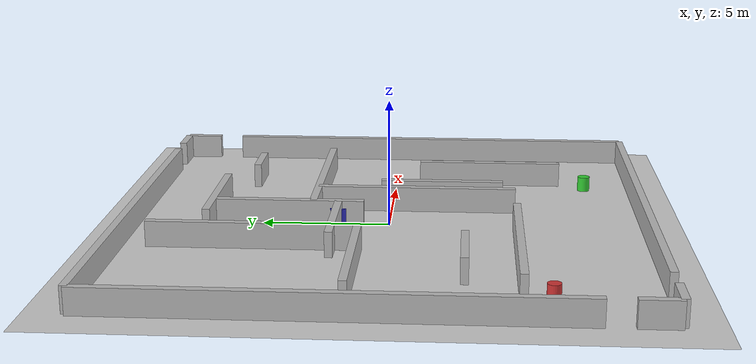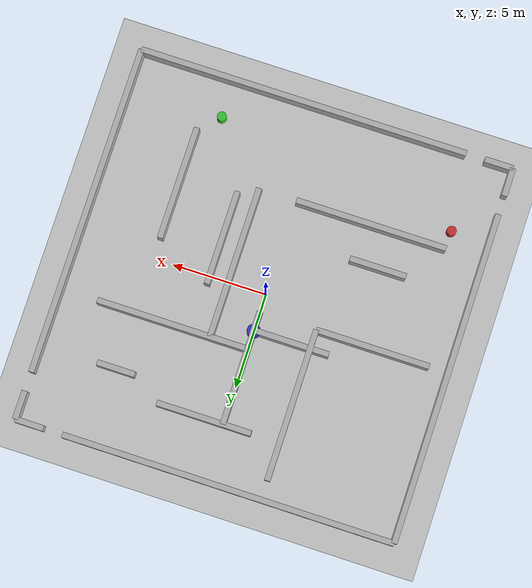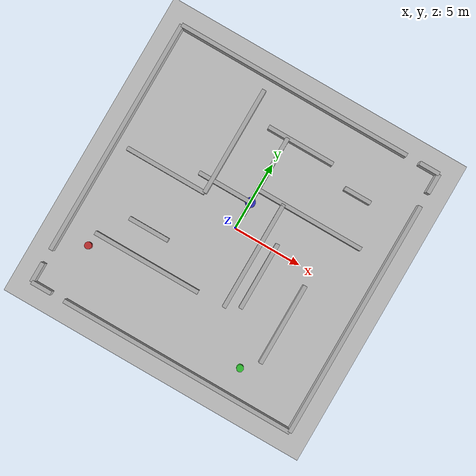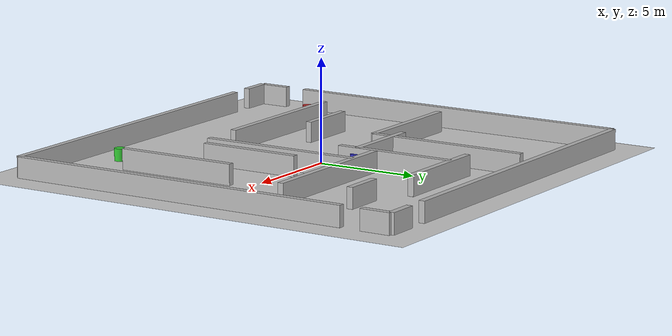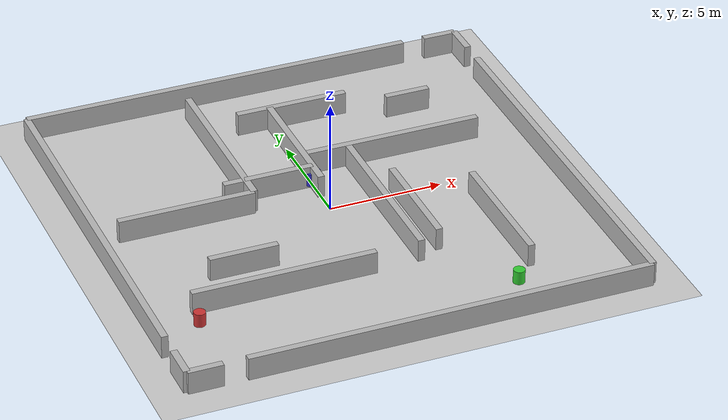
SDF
<sdf version="1.6">
 <world name="maze_world">
  <include><uri>model://sun</uri></include>
  <include><uri>model://ground_plane</uri></include>
  <model name="wall_north_left">
   <static>true</static>
   <link name="link">
    <collision name="collision"><geometry><box><size>17.5 0.3 1</size></box></geometry></collision>
    <visual name="visual"><geometry><box><size>17.5 0.3 1</size></box></geometry></visual>
   </link>
   <pose>-1.25 10 0.5 0 0 0</pose>
  </model>
  <model name="wall_north_right">
   <static>true</static>
   <link name="link">
    <collision name="collision"><geometry><box><size>1.5 0.3 1</size></box></geometry></collision>
    <visual name="visual"><geometry><box><size>1.5 0.3 1</size></box></geometry></visual>
   </link>
   <pose>9.25 10 0.5 0 0 0</pose>
  </model>
  <model name="wall_south_left">
   <static>true</static>
   <link name="link">
    <collision name="collision"><geometry><box><size>1.5 0.3 1</size></box></geometry></collision>
    <visual name="visual"><geometry><box><size>1.5 0.3 1</size></box></geometry></visual>
   </link>
   <pose>-9.25 -10 0.5 0 0 0</pose>
  </model>
  <model name="wall_south_right">
   <static>true</static>
   <link name="link">
    <collision name="collision"><geometry><box><size>17.5 0.3 1</size></box></geometry></collision>
    <visual name="visual"><geometry><box><size>17.5 0.3 1</size></box></geometry></visual>
   </link>
   <pose>1.25 -10 0.5 0 0 0</pose>
  </model>
  <model name="wall_east_bottom">
   <static>true</static>
   <link name="link">
    <collision name="collision"><geometry><box><size>0.3 17.5 1</size></box></geometry></collision>
    <visual name="visual"><geometry><box><size>0.3 17.5 1</size></box></geometry></visual>
   </link>
   <pose>10 -1.25 0.5 0 0 0</pose>
  </model>
  <model name="wall_east_top">
   <static>true</static>
   <link name="link">
    <collision name="collision"><geometry><box><size>0.3 1.5 1</size></box></geometry></collision>
    <visual name="visual"><geometry><box><size>0.3 1.5 1</size></box></geometry></visual>
   </link>
   <pose>10 9.25 0.5 0 0 0</pose>
  </model>
  <model name="wall_west_bottom">
   <static>true</static>
   <link name="link">
    <collision name="collision"><geometry><box><size>0.3 1.5 1</size></box></geometry></collision>
    <visual name="visual"><geometry><box><size>0.3 1.5 1</size></box></geometry></visual>
   </link>
   <pose>-10 -9.25 0.5 0 0 0</pose>
  </model>
  <model name="wall_west_top">
   <static>true</static>
   <link name="link">
    <collision name="collision"><geometry><box><size>0.3 17.5 1</size></box></geometry></collision>
    <visual name="visual"><geometry><box><size>0.3 17.5 1</size></box></geometry></visual>
   </link>
   <pose>-10 1.25 0.5 0 0 0</pose>
  </model>
  <model name="maze_wall1">
   <static>true</static>
   <link name="link">
    <collision name="collision"><geometry><box><size>8 0.3 1</size></box></geometry></collision>
    <visual name="visual"><geometry><box><size>8 0.3 1</size></box></geometry></visual>
   </link>
   <pose>-4 -5 0.5 0 0 0</pose>
  </model>
  <model name="maze_wall2">
   <static>true</static>
   <link name="link">
    <collision name="collision"><geometry><box><size>0.3 8 1</size></box></geometry></collision>
    <visual name="visual"><geometry><box><size>0.3 8 1</size></box></geometry></visual>
   </link>
   <pose>2 -1 0.5 0 0 0</pose>
  </model>
  <model name="maze_wall3">
   <static>true</static>
   <link name="link">
    <collision name="collision"><geometry><box><size>8 0.3 1</size></box></geometry></collision>
    <visual name="visual"><geometry><box><size>8 0.3 1</size></box></geometry></visual>
   </link>
   <pose>4 3 0.5 0 0 0</pose>
  </model>
  <model name="maze_wall4">
   <static>true</static>
   <link name="link">
    <collision name="collision"><geometry><box><size>0.3 8 1</size></box></geometry></collision>
    <visual name="visual"><geometry><box><size>0.3 8 1</size></box></geometry></visual>
   </link>
   <pose>-3 5 0.5 0 0 0</pose>
  </model>
  <model name="maze_wall5">
   <static>true</static>
   <link name="link">
    <collision name="collision"><geometry><box><size>6 0.3 1</size></box></geometry></collision>
    <visual name="visual"><geometry><box><size>6 0.3 1</size></box></geometry></visual>
   </link>
   <pose>-6 1 0.5 0 0 0</pose>
  </model>
  <model name="maze_wall6">
   <static>true</static>
   <link name="link">
    <collision name="collision"><geometry><box><size>0.3 6 1</size></box></geometry></collision>
    <visual name="visual"><geometry><box><size>0.3 6 1</size></box></geometry></visual>
   </link>
   <pose>6 -4 0.5 0 0 0</pose>
  </model>
  <model name="maze_wall7">
   <static>true</static>
   <link name="link">
    <collision name="collision"><geometry><box><size>5 0.3 1</size></box></geometry></collision>
    <visual name="visual"><geometry><box><size>5 0.3 1</size></box></geometry></visual>
   </link>
   <pose>1 7 0.5 0 0 0</pose>
  </model>
  <model name="maze_wall8">
   <static>true</static>
   <link name="link">
    <collision name="collision"><geometry><box><size>0.3 6 1</size></box></geometry></collision>
    <visual name="visual"><geometry><box><size>0.3 6 1</size></box></geometry></visual>
   </link>
   <pose>0 4 0.5 0 0 0</pose>
  </model>
  <model name="maze_wall9">
   <static>true</static>
   <link name="link">
    <collision name="collision"><geometry><box><size>4 0.3 1</size></box></geometry></collision>
    <visual name="visual"><geometry><box><size>4 0.3 1</size></box></geometry></visual>
   </link>
   <pose>-2 2 0.5 0 0 0</pose>
  </model>
  <model name="maze_wall10">
   <static>true</static>
   <link name="link">
    <collision name="collision"><geometry><box><size>0.3 5 1</size></box></geometry></collision>
    <visual name="visual"><geometry><box><size>0.3 5 1</size></box></geometry></visual>
   </link>
   <pose>3 -2 0.5 0 0 0</pose>
  </model>
  <model name="maze_wall11">
   <static>true</static>
   <link name="link">
    <collision name="collision"><geometry><box><size>3 0.3 1</size></box></geometry></collision>
    <visual name="visual"><geometry><box><size>3 0.3 1</size></box></geometry></visual>
   </link>
   <pose>-5 -3 0.5 0 0 0</pose>
  </model>
  <model name="maze_wall12">
   <static>true</static>
   <link name="link">
    <collision name="collision"><geometry><box><size>2 0.3 1</size></box></geometry></collision>
    <visual name="visual"><geometry><box><size>2 0.3 1</size></box></geometry></visual>
   </link>
   <pose>6 6 0.5 0 0 0</pose>
  </model>
  <model name="dynamic_obstacle_1">
   <link name="link">
    <collision name="collision">
     <geometry><cylinder><radius>0.25</radius><length>0.6</length></cylinder></geometry>
    </collision>
    <visual name="visual">
     <geometry><cylinder><radius>0.25</radius><length>0.6</length></cylinder></geometry>
     <material><ambient>0.8 0.2 0.2 1</ambient><diffuse>0.8 0.2 0.2 1</diffuse></material>
    </visual>
   </link>
   <pose>-8 -6 0.4 0 0 0</pose>
  </model>
  <model name="dynamic_obstacle_2">
   <link name="link">
    <collision name="collision">
     <geometry><cylinder><radius>0.25</radius><length>0.6</length></cylinder></geometry>
    </collision>
    <visual name="visual">
     <geometry><cylinder><radius>0.25</radius><length>0.6</length></cylinder></geometry>
     <material><ambient>0.2 0.8 0.2 1</ambient><diffuse>0.2 0.8 0.2 1</diffuse></material>
    </visual>
   </link>
   <pose>5 -8 0.4 0 0 0</pose>
  </model>
  <model name="dynamic_obstacle_3">
   <link name="link">
    <collision name="collision">
     <geometry><cylinder><radius>0.35</radius><length>0.6</length></cylinder></geometry>
    </collision>
    <visual name="visual">
     <geometry><cylinder><radius>0.35</radius><length>0.6</length></cylinder></geometry>
     <material><ambient>0.2 0.2 0.8 1</ambient><diffuse>0.2 0.2 0.8 1</diffuse></material>
    </visual>
   </link>
   <pose>0 2 0.4 0 0 0</pose>
  </model>
 </world>
</sdf>
